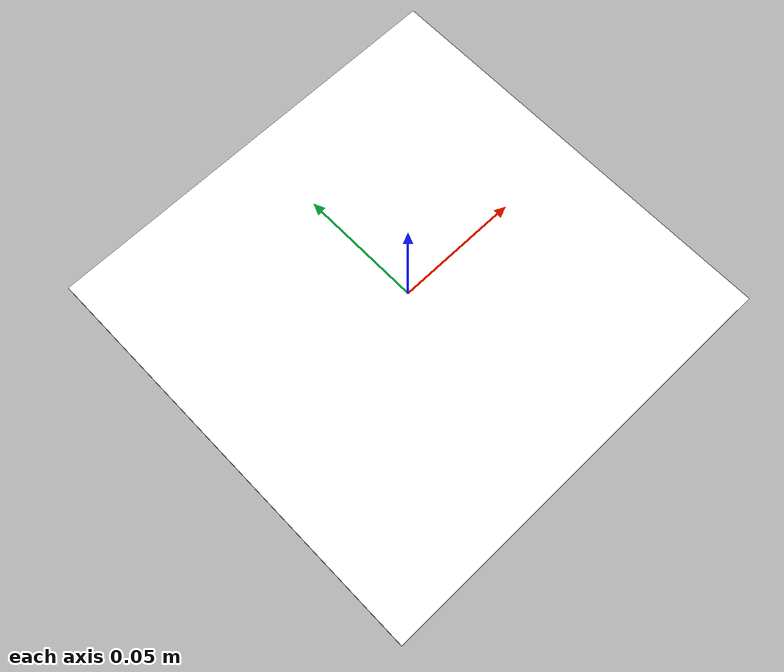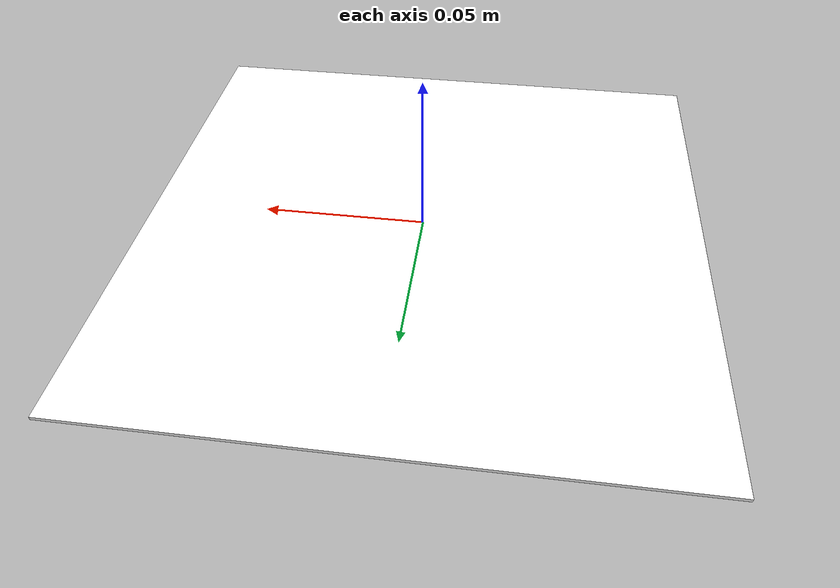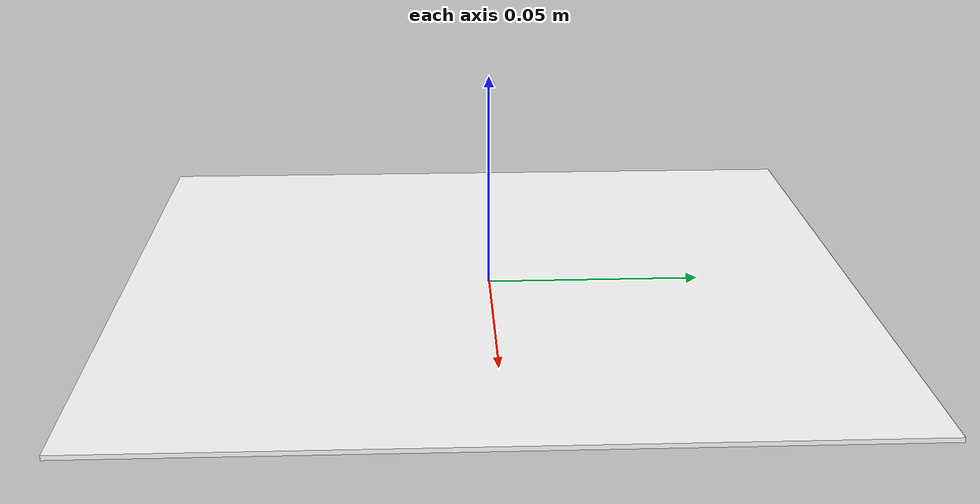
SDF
<?xml version='1.0'?>
<sdf version='1.9'>
  <model name='Apriltag36_11_00001'>
    <link name='main'>
      <pose>0 0 0 0 0 0</pose>
      <visual name='main_Visual'>
        <geometry>
          <box>
            <size>0.172 0.172 0.001</size>
          </box>
        </geometry>
        <material>
          <ambient>1 1 1 1</ambient>
          <diffuse>1 1 1 1</diffuse>
          <specular>0 0 0 1</specular>
          <pbr>
            <metal>
              <albedo_map>model://Apriltag36_11_00001/materials/textures/tag36_11_00001.png</albedo_map>
            </metal>
          </pbr>
        </material>
      </visual>
      <collision name='main_Collision'>
        <geometry>
          <box>
            <size>0.172 0.172 0.001</size>
          </box>
        </geometry>
      </collision>
    </link>
    <static>true</static>
  </model>
</sdf>
